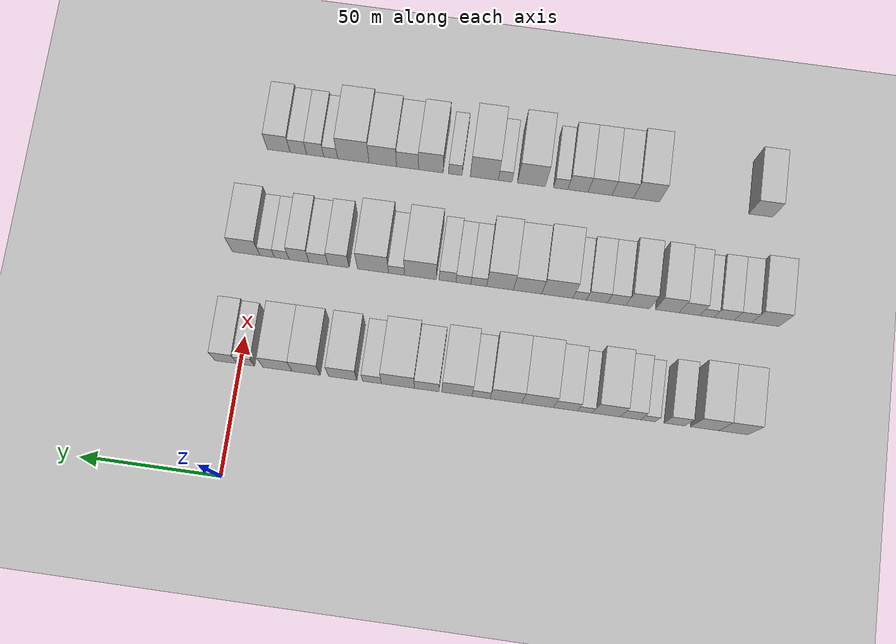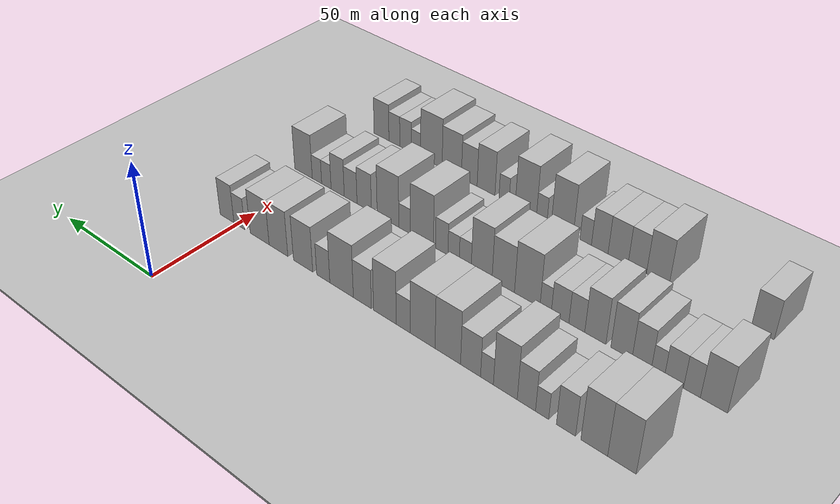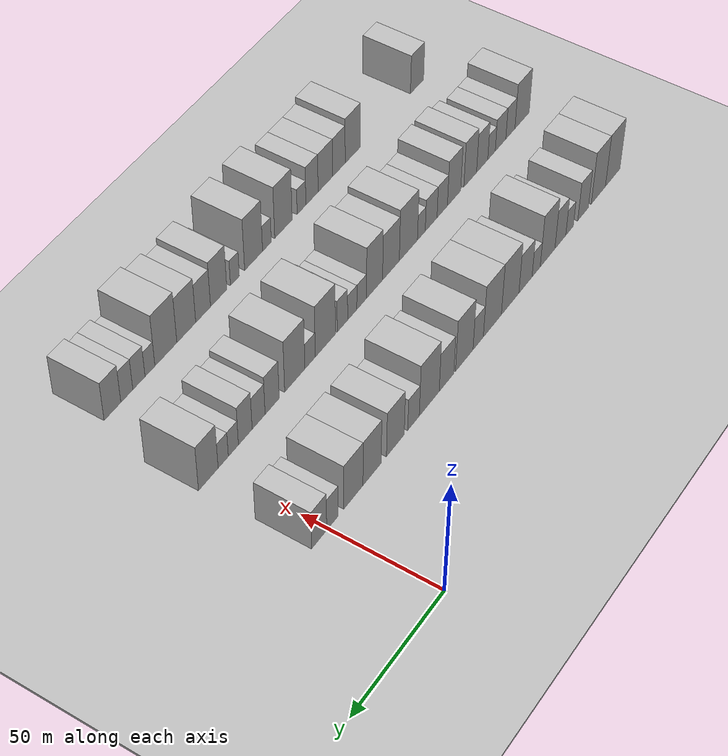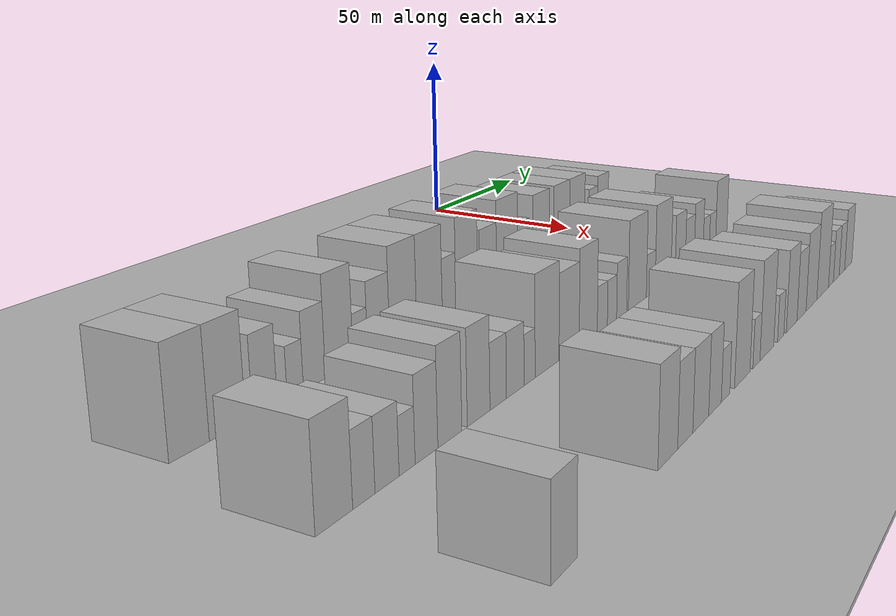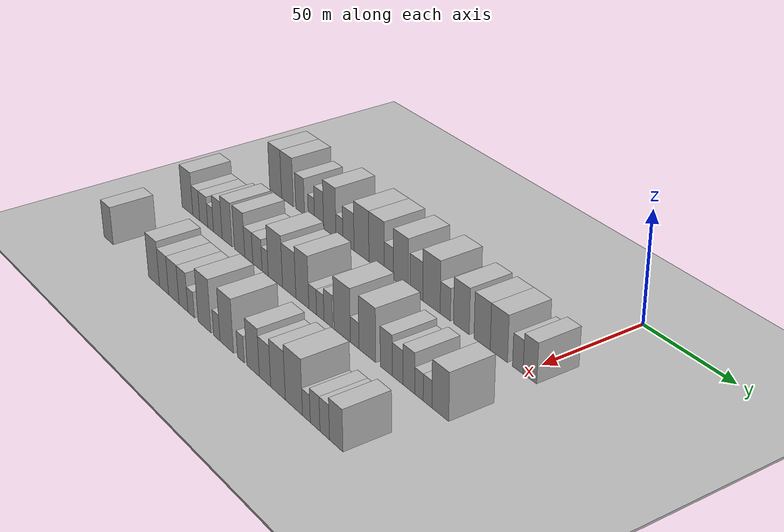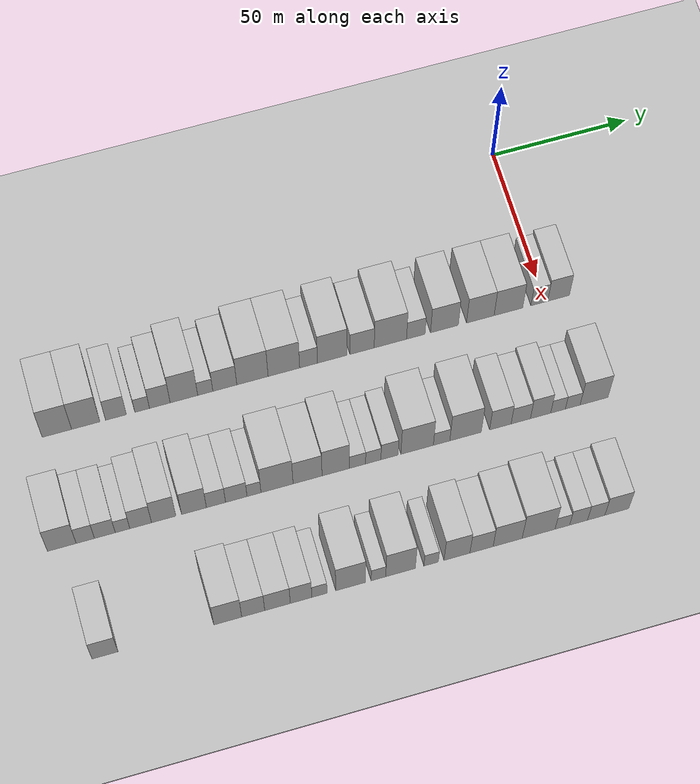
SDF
<sdf version="1.6">
 <world name="default">
  <include><name>ground_plane_1</name><uri>model://HANNAS_ground_plane</uri></include>
  <include>
   <name>ground_plane_2</name>
   <uri>model://HANNAS_ground_plane</uri>
   <pose>100 0 0  0 0 0</pose>
  </include>
  <model name="building_27">
   <static>1</static>
   <pose>50.0000 -175.0752 0 0.000000 0.000000 0.000000</pose>
   <link name="link">
    <pose>0 0 12.00 0 0 0</pose>
    <collision name="collision"><geometry><box><size>20.0000 10.2930 24.0000</size></box></geometry></collision>
    <visual name="visual">
     <cast_shadows>0</cast_shadows>
     <geometry><box><size>20.0000 10.2930 24.0000</size></box></geometry>
     <material>
      <script>
       <uri>model://HANNAS_wall/materials/scripts</uri>
       <uri>model://HANNAS_wall/materials/textures</uri>
       <name>vrc/HANNAS_wall</name>
      </script>
     </material>
    </visual>
   </link>
  </model>
  <model name="building_28">
   <static>1</static>
   <pose>50.0000 -164.9547 0 0.000000 0.000000 0.000000</pose>
   <link name="link">
    <pose>0 0 12.00 0 0 0</pose>
    <collision name="collision"><geometry><box><size>20.0000 9.9480 24.0000</size></box></geometry></collision>
    <visual name="visual">
     <cast_shadows>0</cast_shadows>
     <geometry><box><size>20.0000 9.9480 24.0000</size></box></geometry>
     <material>
      <script>
       <uri>model://HANNAS_wall/materials/scripts</uri>
       <uri>model://HANNAS_wall/materials/textures</uri>
       <name>vrc/HANNAS_wall</name>
      </script>
     </material>
    </visual>
   </link>
  </model>
  <model name="building_29">
   <static>1</static>
   <pose>50.0000 -154.3123 0 0.000000 0.000000 0.000000</pose>
   <link name="link">
    <pose>0 0 9.00 0 0 0</pose>
    <collision name="collision"><geometry><box><size>20.0000 7.3368 18.0000</size></box></geometry></collision>
    <visual name="visual">
     <cast_shadows>0</cast_shadows>
     <geometry><box><size>20.0000 7.3368 18.0000</size></box></geometry>
     <material>
      <script>
       <uri>model://HANNAS_wall/materials/scripts</uri>
       <uri>model://HANNAS_wall/materials/textures</uri>
       <name>vrc/HANNAS_wall</name>
      </script>
     </material>
    </visual>
   </link>
  </model>
  <model name="building_30">
   <static>1</static>
   <pose>50.0000 -145.0595 0 0.000000 0.000000 0.000000</pose>
   <link name="link">
    <pose>0 0 6.00 0 0 0</pose>
    <collision name="collision"><geometry><box><size>20.0000 5.1688 12.0000</size></box></geometry></collision>
    <visual name="visual">
     <cast_shadows>0</cast_shadows>
     <geometry><box><size>20.0000 5.1688 12.0000</size></box></geometry>
     <material>
      <script>
       <uri>model://HANNAS_wall/materials/scripts</uri>
       <uri>model://HANNAS_wall/materials/textures</uri>
       <name>vrc/HANNAS_wall</name>
      </script>
     </material>
    </visual>
   </link>
  </model>
  <model name="building_31">
   <static>1</static>
   <pose>50.0000 -138.8171 0 0.000000 0.000000 0.000000</pose>
   <link name="link">
    <pose>0 0 9.00 0 0 0</pose>
    <collision name="collision"><geometry><box><size>20.0000 7.3159 18.0000</size></box></geometry></collision>
    <visual name="visual">
     <cast_shadows>0</cast_shadows>
     <geometry><box><size>20.0000 7.3159 18.0000</size></box></geometry>
     <material>
      <script>
       <uri>model://HANNAS_wall/materials/scripts</uri>
       <uri>model://HANNAS_wall/materials/textures</uri>
       <name>vrc/HANNAS_wall</name>
      </script>
     </material>
    </visual>
   </link>
  </model>
  <model name="building_32">
   <static>1</static>
   <pose>50.0000 -130.2730 0 0.000000 0.000000 0.000000</pose>
   <link name="link">
    <pose>0 0 12.00 0 0 0</pose>
    <collision name="collision"><geometry><box><size>20.0000 9.7723 24.0000</size></box></geometry></collision>
    <visual name="visual">
     <cast_shadows>0</cast_shadows>
     <geometry><box><size>20.0000 9.7723 24.0000</size></box></geometry>
     <material>
      <script>
       <uri>model://HANNAS_wall/materials/scripts</uri>
       <uri>model://HANNAS_wall/materials/textures</uri>
       <name>vrc/HANNAS_wall</name>
      </script>
     </material>
    </visual>
   </link>
  </model>
  <model name="building_33">
   <static>1</static>
   <pose>50.0000 -122.7039 0 0.000000 0.000000 0.000000</pose>
   <link name="link">
    <pose>0 0 6.00 0 0 0</pose>
    <collision name="collision"><geometry><box><size>20.0000 5.3659 12.0000</size></box></geometry></collision>
    <visual name="visual">
     <cast_shadows>0</cast_shadows>
     <geometry><box><size>20.0000 5.3659 12.0000</size></box></geometry>
     <material>
      <script>
       <uri>model://HANNAS_wall/materials/scripts</uri>
       <uri>model://HANNAS_wall/materials/textures</uri>
       <name>vrc/HANNAS_wall</name>
      </script>
     </material>
    </visual>
   </link>
  </model>
  <model name="building_34">
   <static>1</static>
   <pose>50.0000 -115.7547 0 0.000000 0.000000 0.000000</pose>
   <link name="link">
    <pose>0 0 9.00 0 0 0</pose>
    <collision name="collision"><geometry><box><size>20.0000 8.5325 18.0000</size></box></geometry></collision>
    <visual name="visual">
     <cast_shadows>0</cast_shadows>
     <geometry><box><size>20.0000 8.5325 18.0000</size></box></geometry>
     <material>
      <script>
       <uri>model://HANNAS_wall/materials/scripts</uri>
       <uri>model://HANNAS_wall/materials/textures</uri>
       <name>vrc/HANNAS_wall</name>
      </script>
     </material>
    </visual>
   </link>
  </model>
  <model name="building_35">
   <static>1</static>
   <pose>50.0000 -105.9031 0 0.000000 0.000000 0.000000</pose>
   <link name="link">
    <pose>0 0 12.00 0 0 0</pose>
    <collision name="collision"><geometry><box><size>20.0000 11.1709 24.0000</size></box></geometry></collision>
    <visual name="visual">
     <cast_shadows>0</cast_shadows>
     <geometry><box><size>20.0000 11.1709 24.0000</size></box></geometry>
     <material>
      <script>
       <uri>model://HANNAS_wall/materials/scripts</uri>
       <uri>model://HANNAS_wall/materials/textures</uri>
       <name>vrc/HANNAS_wall</name>
      </script>
     </material>
    </visual>
   </link>
  </model>
  <model name="building_36">
   <static>1</static>
   <pose>50.0000 -94.6707 0 0.000000 0.000000 0.000000</pose>
   <link name="link">
    <pose>0 0 12.00 0 0 0</pose>
    <collision name="collision"><geometry><box><size>20.0000 11.2938 24.0000</size></box></geometry></collision>
    <visual name="visual">
     <cast_shadows>0</cast_shadows>
     <geometry><box><size>20.0000 11.2938 24.0000</size></box></geometry>
     <material>
      <script>
       <uri>model://HANNAS_wall/materials/scripts</uri>
       <uri>model://HANNAS_wall/materials/textures</uri>
       <name>vrc/HANNAS_wall</name>
      </script>
     </material>
    </visual>
   </link>
  </model>
  <model name="building_37">
   <static>1</static>
   <pose>50.0000 -85.8320 0 0.000000 0.000000 0.000000</pose>
   <link name="link">
    <pose>0 0 7.50 0 0 0</pose>
    <collision name="collision"><geometry><box><size>20.0000 6.3835 15.0000</size></box></geometry></collision>
    <visual name="visual">
     <cast_shadows>0</cast_shadows>
     <geometry><box><size>20.0000 6.3835 15.0000</size></box></geometry>
     <material>
      <script>
       <uri>model://HANNAS_wall/materials/scripts</uri>
       <uri>model://HANNAS_wall/materials/textures</uri>
       <name>vrc/HANNAS_wall</name>
      </script>
     </material>
    </visual>
   </link>
  </model>
  <model name="building_38">
   <static>1</static>
   <pose>50.0000 -77.3093 0 0.000000 0.000000 0.000000</pose>
   <link name="link">
    <pose>0 0 12.00 0 0 0</pose>
    <collision name="collision"><geometry><box><size>20.0000 10.6619 24.0000</size></box></geometry></collision>
    <visual name="visual">
     <cast_shadows>0</cast_shadows>
     <geometry><box><size>20.0000 10.6619 24.0000</size></box></geometry>
     <material>
      <script>
       <uri>model://HANNAS_wall/materials/scripts</uri>
       <uri>model://HANNAS_wall/materials/textures</uri>
       <name>vrc/HANNAS_wall</name>
      </script>
     </material>
    </visual>
   </link>
  </model>
  <model name="building_39">
   <static>1</static>
   <pose>50.0000 -66.5992 0 0.000000 0.000000 0.000000</pose>
   <link name="link">
    <pose>0 0 9.00 0 0 0</pose>
    <collision name="collision"><geometry><box><size>20.0000 8.7583 18.0000</size></box></geometry></collision>
    <visual name="visual">
     <cast_shadows>0</cast_shadows>
     <geometry><box><size>20.0000 8.7583 18.0000</size></box></geometry>
     <material>
      <script>
       <uri>model://HANNAS_wall/materials/scripts</uri>
       <uri>model://HANNAS_wall/materials/textures</uri>
       <name>vrc/HANNAS_wall</name>
      </script>
     </material>
    </visual>
   </link>
  </model>
  <model name="building_40">
   <static>1</static>
   <pose>50.0000 -56.3737 0 0.000000 0.000000 0.000000</pose>
   <link name="link">
    <pose>0 0 12.00 0 0 0</pose>
    <collision name="collision"><geometry><box><size>20.0000 11.6929 24.0000</size></box></geometry></collision>
    <visual name="visual">
     <cast_shadows>0</cast_shadows>
     <geometry><box><size>20.0000 11.6929 24.0000</size></box></geometry>
     <material>
      <script>
       <uri>model://HANNAS_wall/materials/scripts</uri>
       <uri>model://HANNAS_wall/materials/textures</uri>
       <name>vrc/HANNAS_wall</name>
      </script>
     </material>
    </visual>
   </link>
  </model>
  <model name="building_41">
   <static>1</static>
   <pose>50.0000 -47.1765 0 0.000000 0.000000 0.000000</pose>
   <link name="link">
    <pose>0 0 7.50 0 0 0</pose>
    <collision name="collision"><geometry><box><size>20.0000 6.7015 15.0000</size></box></geometry></collision>
    <visual name="visual">
     <cast_shadows>0</cast_shadows>
     <geometry><box><size>20.0000 6.7015 15.0000</size></box></geometry>
     <material>
      <script>
       <uri>model://HANNAS_wall/materials/scripts</uri>
       <uri>model://HANNAS_wall/materials/textures</uri>
       <name>vrc/HANNAS_wall</name>
      </script>
     </material>
    </visual>
   </link>
  </model>
  <model name="building_42">
   <static>1</static>
   <pose>50.0000 -36.7780 0 0.000000 0.000000 0.000000</pose>
   <link name="link">
    <pose>0 0 10.50 0 0 0</pose>
    <collision name="collision"><geometry><box><size>20.0000 10.0955 21.0000</size></box></geometry></collision>
    <visual name="visual">
     <cast_shadows>0</cast_shadows>
     <geometry><box><size>20.0000 10.0955 21.0000</size></box></geometry>
     <material>
      <script>
       <uri>model://HANNAS_wall/materials/scripts</uri>
       <uri>model://HANNAS_wall/materials/textures</uri>
       <name>vrc/HANNAS_wall</name>
      </script>
     </material>
    </visual>
   </link>
  </model>
  <model name="building_43">
   <static>1</static>
   <pose>50.0000 -23.6953 0 0.000000 0.000000 0.000000</pose>
   <link name="link">
    <pose>0 0 10.50 0 0 0</pose>
    <collision name="collision"><geometry><box><size>20.0000 10.0698 21.0000</size></box></geometry></collision>
    <visual name="visual">
     <cast_shadows>0</cast_shadows>
     <geometry><box><size>20.0000 10.0698 21.0000</size></box></geometry>
     <material>
      <script>
       <uri>model://HANNAS_wall/materials/scripts</uri>
       <uri>model://HANNAS_wall/materials/textures</uri>
       <name>vrc/HANNAS_wall</name>
      </script>
     </material>
    </visual>
   </link>
  </model>
  <model name="building_44">
   <static>1</static>
   <pose>50.0000 -13.4348 0 0.000000 0.000000 0.000000</pose>
   <link name="link">
    <pose>0 0 10.50 0 0 0</pose>
    <collision name="collision"><geometry><box><size>20.0000 10.4512 21.0000</size></box></geometry></collision>
    <visual name="visual">
     <cast_shadows>0</cast_shadows>
     <geometry><box><size>20.0000 10.4512 21.0000</size></box></geometry>
     <material>
      <script>
       <uri>model://HANNAS_wall/materials/scripts</uri>
       <uri>model://HANNAS_wall/materials/textures</uri>
       <name>vrc/HANNAS_wall</name>
      </script>
     </material>
    </visual>
   </link>
  </model>
  <model name="building_45">
   <static>1</static>
   <pose>50.0000 -2.1242 0 0.000000 0.000000 0.000000</pose>
   <link name="link">
    <pose>0 0 7.50 0 0 0</pose>
    <collision name="collision"><geometry><box><size>20.0000 6.1701 15.0000</size></box></geometry></collision>
    <visual name="visual">
     <cast_shadows>0</cast_shadows>
     <geometry><box><size>20.0000 6.1701 15.0000</size></box></geometry>
     <material>
      <script>
       <uri>model://HANNAS_wall/materials/scripts</uri>
       <uri>model://HANNAS_wall/materials/textures</uri>
       <name>vrc/HANNAS_wall</name>
      </script>
     </material>
    </visual>
   </link>
  </model>
  <model name="building_46">
   <static>1</static>
   <pose>50.0000 4.9469 0 0.000000 0.000000 0.000000</pose>
   <link name="link">
    <pose>0 0 9.00 0 0 0</pose>
    <collision name="collision"><geometry><box><size>20.0000 7.9721 18.0000</size></box></geometry></collision>
    <visual name="visual">
     <cast_shadows>0</cast_shadows>
     <geometry><box><size>20.0000 7.9721 18.0000</size></box></geometry>
     <material>
      <script>
       <uri>model://HANNAS_wall/materials/scripts</uri>
       <uri>model://HANNAS_wall/materials/textures</uri>
       <name>vrc/HANNAS_wall</name>
      </script>
     </material>
    </visual>
   </link>
  </model>
  <model name="building_112">
   <static>1</static>
   <pose>90.0000 -182.9634 0 0.000000 0.000000 0.000000</pose>
   <link name="link">
    <pose>0 0 10.50 0 0 0</pose>
    <collision name="collision"><geometry><box><size>20.0000 9.8793 21.0000</size></box></geometry></collision>
    <visual name="visual">
     <cast_shadows>0</cast_shadows>
     <geometry><box><size>20.0000 9.8793 21.0000</size></box></geometry>
     <material>
      <script>
       <uri>model://HANNAS_wall/materials/scripts</uri>
       <uri>model://HANNAS_wall/materials/textures</uri>
       <name>vrc/HANNAS_wall</name>
      </script>
     </material>
    </visual>
   </link>
  </model>
  <model name="building_113">
   <static>1</static>
   <pose>90.0000 -174.8866 0 0.000000 0.000000 0.000000</pose>
   <link name="link">
    <pose>0 0 7.50 0 0 0</pose>
    <collision name="collision"><geometry><box><size>20.0000 6.2742 15.0000</size></box></geometry></collision>
    <visual name="visual">
     <cast_shadows>0</cast_shadows>
     <geometry><box><size>20.0000 6.2742 15.0000</size></box></geometry>
     <material>
      <script>
       <uri>model://HANNAS_wall/materials/scripts</uri>
       <uri>model://HANNAS_wall/materials/textures</uri>
       <name>vrc/HANNAS_wall</name>
      </script>
     </material>
    </visual>
   </link>
  </model>
  <model name="building_114">
   <static>1</static>
   <pose>90.0000 -168.1521 0 0.000000 0.000000 0.000000</pose>
   <link name="link">
    <pose>0 0 7.50 0 0 0</pose>
    <collision name="collision"><geometry><box><size>20.0000 7.1948 15.0000</size></box></geometry></collision>
    <visual name="visual">
     <cast_shadows>0</cast_shadows>
     <geometry><box><size>20.0000 7.1948 15.0000</size></box></geometry>
     <material>
      <script>
       <uri>model://HANNAS_wall/materials/scripts</uri>
       <uri>model://HANNAS_wall/materials/textures</uri>
       <name>vrc/HANNAS_wall</name>
      </script>
     </material>
    </visual>
   </link>
  </model>
  <model name="building_115">
   <static>1</static>
   <pose>90.0000 -162.0318 0 0.000000 0.000000 0.000000</pose>
   <link name="link">
    <pose>0 0 6.00 0 0 0</pose>
    <collision name="collision"><geometry><box><size>20.0000 5.0458 12.0000</size></box></geometry></collision>
    <visual name="visual">
     <cast_shadows>0</cast_shadows>
     <geometry><box><size>20.0000 5.0458 12.0000</size></box></geometry>
     <material>
      <script>
       <uri>model://HANNAS_wall/materials/scripts</uri>
       <uri>model://HANNAS_wall/materials/textures</uri>
       <name>vrc/HANNAS_wall</name>
      </script>
     </material>
    </visual>
   </link>
  </model>
  <model name="building_116">
   <static>1</static>
   <pose>90.0000 -155.7580 0 0.000000 0.000000 0.000000</pose>
   <link name="link">
    <pose>0 0 9.00 0 0 0</pose>
    <collision name="collision"><geometry><box><size>20.0000 7.5017 18.0000</size></box></geometry></collision>
    <visual name="visual">
     <cast_shadows>0</cast_shadows>
     <geometry><box><size>20.0000 7.5017 18.0000</size></box></geometry>
     <material>
      <script>
       <uri>model://HANNAS_wall/materials/scripts</uri>
       <uri>model://HANNAS_wall/materials/textures</uri>
       <name>vrc/HANNAS_wall</name>
      </script>
     </material>
    </visual>
   </link>
  </model>
  <model name="building_117">
   <static>1</static>
   <pose>90.0000 -147.7885 0 0.000000 0.000000 0.000000</pose>
   <link name="link">
    <pose>0 0 10.50 0 0 0</pose>
    <collision name="collision"><geometry><box><size>20.0000 8.4375 21.0000</size></box></geometry></collision>
    <visual name="visual">
     <cast_shadows>0</cast_shadows>
     <geometry><box><size>20.0000 8.4375 21.0000</size></box></geometry>
     <material>
      <script>
       <uri>model://HANNAS_wall/materials/scripts</uri>
       <uri>model://HANNAS_wall/materials/textures</uri>
       <name>vrc/HANNAS_wall</name>
      </script>
     </material>
    </visual>
   </link>
  </model>
  <model name="building_118">
   <static>1</static>
   <pose>90.0000 -137.2436 0 0.000000 0.000000 0.000000</pose>
   <link name="link">
    <pose>0 0 10.50 0 0 0</pose>
    <collision name="collision"><geometry><box><size>20.0000 8.6522 21.0000</size></box></geometry></collision>
    <visual name="visual">
     <cast_shadows>0</cast_shadows>
     <geometry><box><size>20.0000 8.6522 21.0000</size></box></geometry>
     <material>
      <script>
       <uri>model://HANNAS_wall/materials/scripts</uri>
       <uri>model://HANNAS_wall/materials/textures</uri>
       <name>vrc/HANNAS_wall</name>
      </script>
     </material>
    </visual>
   </link>
  </model>
  <model name="building_119">
   <static>1</static>
   <pose>90.0000 -129.5872 0 0.000000 0.000000 0.000000</pose>
   <link name="link">
    <pose>0 0 7.50 0 0 0</pose>
    <collision name="collision"><geometry><box><size>20.0000 6.6606 15.0000</size></box></geometry></collision>
    <visual name="visual">
     <cast_shadows>0</cast_shadows>
     <geometry><box><size>20.0000 6.6606 15.0000</size></box></geometry>
     <material>
      <script>
       <uri>model://HANNAS_wall/materials/scripts</uri>
       <uri>model://HANNAS_wall/materials/textures</uri>
       <name>vrc/HANNAS_wall</name>
      </script>
     </material>
    </visual>
   </link>
  </model>
  <model name="building_120">
   <static>1</static>
   <pose>90.0000 -122.5111 0 0.000000 0.000000 0.000000</pose>
   <link name="link">
    <pose>0 0 7.50 0 0 0</pose>
    <collision name="collision"><geometry><box><size>20.0000 7.4914 15.0000</size></box></geometry></collision>
    <visual name="visual">
     <cast_shadows>0</cast_shadows>
     <geometry><box><size>20.0000 7.4914 15.0000</size></box></geometry>
     <material>
      <script>
       <uri>model://HANNAS_wall/materials/scripts</uri>
       <uri>model://HANNAS_wall/materials/textures</uri>
       <name>vrc/HANNAS_wall</name>
      </script>
     </material>
    </visual>
   </link>
  </model>
  <model name="building_121">
   <static>1</static>
   <pose>90.0000 -116.3215 0 0.000000 0.000000 0.000000</pose>
   <link name="link">
    <pose>0 0 6.00 0 0 0</pose>
    <collision name="collision"><geometry><box><size>20.0000 4.8878 12.0000</size></box></geometry></collision>
    <visual name="visual">
     <cast_shadows>0</cast_shadows>
     <geometry><box><size>20.0000 4.8878 12.0000</size></box></geometry>
     <material>
      <script>
       <uri>model://HANNAS_wall/materials/scripts</uri>
       <uri>model://HANNAS_wall/materials/textures</uri>
       <name>vrc/HANNAS_wall</name>
      </script>
     </material>
    </visual>
   </link>
  </model>
  <model name="building_122">
   <static>1</static>
   <pose>90.0000 -108.2476 0 0.000000 0.000000 0.000000</pose>
   <link name="link">
    <pose>0 0 12.00 0 0 0</pose>
    <collision name="collision"><geometry><box><size>20.0000 11.2600 24.0000</size></box></geometry></collision>
    <visual name="visual">
     <cast_shadows>0</cast_shadows>
     <geometry><box><size>20.0000 11.2600 24.0000</size></box></geometry>
     <material>
      <script>
       <uri>model://HANNAS_wall/materials/scripts</uri>
       <uri>model://HANNAS_wall/materials/textures</uri>
       <name>vrc/HANNAS_wall</name>
      </script>
     </material>
    </visual>
   </link>
  </model>
  <model name="building_123">
   <static>1</static>
   <pose>90.0000 -97.5231 0 0.000000 0.000000 0.000000</pose>
   <link name="link">
    <pose>0 0 10.50 0 0 0</pose>
    <collision name="collision"><geometry><box><size>20.0000 10.1890 21.0000</size></box></geometry></collision>
    <visual name="visual">
     <cast_shadows>0</cast_shadows>
     <geometry><box><size>20.0000 10.1890 21.0000</size></box></geometry>
     <material>
      <script>
       <uri>model://HANNAS_wall/materials/scripts</uri>
       <uri>model://HANNAS_wall/materials/textures</uri>
       <name>vrc/HANNAS_wall</name>
      </script>
     </material>
    </visual>
   </link>
  </model>
  <model name="building_124">
   <static>1</static>
   <pose>90.0000 -87.5817 0 0.000000 0.000000 0.000000</pose>
   <link name="link">
    <pose>0 0 12.00 0 0 0</pose>
    <collision name="collision"><geometry><box><size>20.0000 9.6939 24.0000</size></box></geometry></collision>
    <visual name="visual">
     <cast_shadows>0</cast_shadows>
     <geometry><box><size>20.0000 9.6939 24.0000</size></box></geometry>
     <material>
      <script>
       <uri>model://HANNAS_wall/materials/scripts</uri>
       <uri>model://HANNAS_wall/materials/textures</uri>
       <name>vrc/HANNAS_wall</name>
      </script>
     </material>
    </visual>
   </link>
  </model>
  <model name="building_125">
   <static>1</static>
   <pose>90.0000 -79.8986 0 0.000000 0.000000 0.000000</pose>
   <link name="link">
    <pose>0 0 6.00 0 0 0</pose>
    <collision name="collision"><geometry><box><size>20.0000 5.6722 12.0000</size></box></geometry></collision>
    <visual name="visual">
     <cast_shadows>0</cast_shadows>
     <geometry><box><size>20.0000 5.6722 12.0000</size></box></geometry>
     <material>
      <script>
       <uri>model://HANNAS_wall/materials/scripts</uri>
       <uri>model://HANNAS_wall/materials/textures</uri>
       <name>vrc/HANNAS_wall</name>
      </script>
     </material>
    </visual>
   </link>
  </model>
  <model name="building_126">
   <static>1</static>
   <pose>90.0000 -74.3514 0 0.000000 0.000000 0.000000</pose>
   <link name="link">
    <pose>0 0 6.00 0 0 0</pose>
    <collision name="collision"><geometry><box><size>20.0000 5.4222 12.0000</size></box></geometry></collision>
    <visual name="visual">
     <cast_shadows>0</cast_shadows>
     <geometry><box><size>20.0000 5.4222 12.0000</size></box></geometry>
     <material>
      <script>
       <uri>model://HANNAS_wall/materials/scripts</uri>
       <uri>model://HANNAS_wall/materials/textures</uri>
       <name>vrc/HANNAS_wall</name>
      </script>
     </material>
    </visual>
   </link>
  </model>
  <model name="building_127">
   <static>1</static>
   <pose>90.0000 -68.6006 0 0.000000 0.000000 0.000000</pose>
   <link name="link">
    <pose>0 0 7.50 0 0 0</pose>
    <collision name="collision"><geometry><box><size>20.0000 6.0794 15.0000</size></box></geometry></collision>
    <visual name="visual">
     <cast_shadows>0</cast_shadows>
     <geometry><box><size>20.0000 6.0794 15.0000</size></box></geometry>
     <material>
      <script>
       <uri>model://HANNAS_wall/materials/scripts</uri>
       <uri>model://HANNAS_wall/materials/textures</uri>
       <name>vrc/HANNAS_wall</name>
      </script>
     </material>
    </visual>
   </link>
  </model>
  <model name="building_128">
   <static>1</static>
   <pose>90.0000 -58.7917 0 0.000000 0.000000 0.000000</pose>
   <link name="link">
    <pose>0 0 12.00 0 0 0</pose>
    <collision name="collision"><geometry><box><size>20.0000 11.5384 24.0000</size></box></geometry></collision>
    <visual name="visual">
     <cast_shadows>0</cast_shadows>
     <geometry><box><size>20.0000 11.5384 24.0000</size></box></geometry>
     <material>
      <script>
       <uri>model://HANNAS_wall/materials/scripts</uri>
       <uri>model://HANNAS_wall/materials/textures</uri>
       <name>vrc/HANNAS_wall</name>
      </script>
     </material>
    </visual>
   </link>
  </model>
  <model name="building_129">
   <static>1</static>
   <pose>90.0000 -50.0943 0 0.000000 0.000000 0.000000</pose>
   <link name="link">
    <pose>0 0 6.00 0 0 0</pose>
    <collision name="collision"><geometry><box><size>20.0000 5.8565 12.0000</size></box></geometry></collision>
    <visual name="visual">
     <cast_shadows>0</cast_shadows>
     <geometry><box><size>20.0000 5.8565 12.0000</size></box></geometry>
     <material>
      <script>
       <uri>model://HANNAS_wall/materials/scripts</uri>
       <uri>model://HANNAS_wall/materials/textures</uri>
       <name>vrc/HANNAS_wall</name>
      </script>
     </material>
    </visual>
   </link>
  </model>
  <model name="building_130">
   <static>1</static>
   <pose>90.0000 -41.5544 0 0.000000 0.000000 0.000000</pose>
   <link name="link">
    <pose>0 0 12.00 0 0 0</pose>
    <collision name="collision"><geometry><box><size>20.0000 11.2233 24.0000</size></box></geometry></collision>
    <visual name="visual">
     <cast_shadows>0</cast_shadows>
     <geometry><box><size>20.0000 11.2233 24.0000</size></box></geometry>
     <material>
      <script>
       <uri>model://HANNAS_wall/materials/scripts</uri>
       <uri>model://HANNAS_wall/materials/textures</uri>
       <name>vrc/HANNAS_wall</name>
      </script>
     </material>
    </visual>
   </link>
  </model>
  <model name="building_131">
   <static>1</static>
   <pose>90.0000 -29.0975 0 0.000000 0.000000 0.000000</pose>
   <link name="link">
    <pose>0 0 9.00 0 0 0</pose>
    <collision name="collision"><geometry><box><size>20.0000 7.6905 18.0000</size></box></geometry></collision>
    <visual name="visual">
     <cast_shadows>0</cast_shadows>
     <geometry><box><size>20.0000 7.6905 18.0000</size></box></geometry>
     <material>
      <script>
       <uri>model://HANNAS_wall/materials/scripts</uri>
       <uri>model://HANNAS_wall/materials/textures</uri>
       <name>vrc/HANNAS_wall</name>
      </script>
     </material>
    </visual>
   </link>
  </model>
  <model name="building_132">
   <static>1</static>
   <pose>90.0000 -21.7808 0 0.000000 0.000000 0.000000</pose>
   <link name="link">
    <pose>0 0 7.50 0 0 0</pose>
    <collision name="collision"><geometry><box><size>20.0000 6.9428 15.0000</size></box></geometry></collision>
    <visual name="visual">
     <cast_shadows>0</cast_shadows>
     <geometry><box><size>20.0000 6.9428 15.0000</size></box></geometry>
     <material>
      <script>
       <uri>model://HANNAS_wall/materials/scripts</uri>
       <uri>model://HANNAS_wall/materials/textures</uri>
       <name>vrc/HANNAS_wall</name>
      </script>
     </material>
    </visual>
   </link>
  </model>
  <model name="building_133">
   <static>1</static>
   <pose>90.0000 -14.6648 0 0.000000 0.000000 0.000000</pose>
   <link name="link">
    <pose>0 0 9.00 0 0 0</pose>
    <collision name="collision"><geometry><box><size>20.0000 7.2892 18.0000</size></box></geometry></collision>
    <visual name="visual">
     <cast_shadows>0</cast_shadows>
     <geometry><box><size>20.0000 7.2892 18.0000</size></box></geometry>
     <material>
      <script>
       <uri>model://HANNAS_wall/materials/scripts</uri>
       <uri>model://HANNAS_wall/materials/textures</uri>
       <name>vrc/HANNAS_wall</name>
      </script>
     </material>
    </visual>
   </link>
  </model>
  <model name="building_134">
   <static>1</static>
   <pose>90.0000 -8.3764 0 0.000000 0.000000 0.000000</pose>
   <link name="link">
    <pose>0 0 6.00 0 0 0</pose>
    <collision name="collision"><geometry><box><size>20.0000 5.2877 12.0000</size></box></geometry></collision>
    <visual name="visual">
     <cast_shadows>0</cast_shadows>
     <geometry><box><size>20.0000 5.2877 12.0000</size></box></geometry>
     <material>
      <script>
       <uri>model://HANNAS_wall/materials/scripts</uri>
       <uri>model://HANNAS_wall/materials/textures</uri>
       <name>vrc/HANNAS_wall</name>
      </script>
     </material>
    </visual>
   </link>
  </model>
  <model name="building_135">
   <static>1</static>
   <pose>90.0000 -3.0791 0 0.000000 0.000000 0.000000</pose>
   <link name="link">
    <pose>0 0 6.00 0 0 0</pose>
    <collision name="collision"><geometry><box><size>20.0000 5.3068 12.0000</size></box></geometry></collision>
    <visual name="visual">
     <cast_shadows>0</cast_shadows>
     <geometry><box><size>20.0000 5.3068 12.0000</size></box></geometry>
     <material>
      <script>
       <uri>model://HANNAS_wall/materials/scripts</uri>
       <uri>model://HANNAS_wall/materials/textures</uri>
       <name>vrc/HANNAS_wall</name>
      </script>
     </material>
    </visual>
   </link>
  </model>
  <model name="building_136">
   <static>1</static>
   <pose>90.0000 4.6169 0 0.000000 0.000000 0.000000</pose>
   <link name="link">
    <pose>0 0 10.50 0 0 0</pose>
    <collision name="collision"><geometry><box><size>20.0000 10.0852 21.0000</size></box></geometry></collision>
    <visual name="visual">
     <cast_shadows>0</cast_shadows>
     <geometry><box><size>20.0000 10.0852 21.0000</size></box></geometry>
     <material>
      <script>
       <uri>model://HANNAS_wall/materials/scripts</uri>
       <uri>model://HANNAS_wall/materials/textures</uri>
       <name>vrc/HANNAS_wall</name>
      </script>
     </material>
    </visual>
   </link>
  </model>
  <model name="building_193">
   <static>1</static>
   <pose>130.0000 -178.0120 0 0.000000 0.000000 0.000000</pose>
   <link name="link">
    <pose>0 0 9.00 0 0 0</pose>
    <collision name="collision"><geometry><box><size>20.0000 8.7974 18.0000</size></box></geometry></collision>
    <visual name="visual">
     <cast_shadows>0</cast_shadows>
     <geometry><box><size>20.0000 8.7974 18.0000</size></box></geometry>
     <material>
      <script>
       <uri>model://HANNAS_wall/materials/scripts</uri>
       <uri>model://HANNAS_wall/materials/textures</uri>
       <name>vrc/HANNAS_wall</name>
      </script>
     </material>
    </visual>
   </link>
  </model>
  <model name="building_194">
   <static>1</static>
   <pose>130.0000 -136.2682 0 0.000000 0.000000 0.000000</pose>
   <link name="link">
    <pose>0 0 10.50 0 0 0</pose>
    <collision name="collision"><geometry><box><size>20.0000 9.5634 21.0000</size></box></geometry></collision>
    <visual name="visual">
     <cast_shadows>0</cast_shadows>
     <geometry><box><size>20.0000 9.5634 21.0000</size></box></geometry>
     <material>
      <script>
       <uri>model://HANNAS_wall/materials/scripts</uri>
       <uri>model://HANNAS_wall/materials/textures</uri>
       <name>vrc/HANNAS_wall</name>
      </script>
     </material>
    </visual>
   </link>
  </model>
  <model name="building_195">
   <static>1</static>
   <pose>130.0000 -127.5480 0 0.000000 0.000000 0.000000</pose>
   <link name="link">
    <pose>0 0 9.00 0 0 0</pose>
    <collision name="collision"><geometry><box><size>20.0000 7.8770 18.0000</size></box></geometry></collision>
    <visual name="visual">
     <cast_shadows>0</cast_shadows>
     <geometry><box><size>20.0000 7.8770 18.0000</size></box></geometry>
     <material>
      <script>
       <uri>model://HANNAS_wall/materials/scripts</uri>
       <uri>model://HANNAS_wall/materials/textures</uri>
       <name>vrc/HANNAS_wall</name>
      </script>
     </material>
    </visual>
   </link>
  </model>
  <model name="building_196">
   <static>1</static>
   <pose>130.0000 -119.2129 0 0.000000 0.000000 0.000000</pose>
   <link name="link">
    <pose>0 0 9.00 0 0 0</pose>
    <collision name="collision"><geometry><box><size>20.0000 8.7932 18.0000</size></box></geometry></collision>
    <visual name="visual">
     <cast_shadows>0</cast_shadows>
     <geometry><box><size>20.0000 8.7932 18.0000</size></box></geometry>
     <material>
      <script>
       <uri>model://HANNAS_wall/materials/scripts</uri>
       <uri>model://HANNAS_wall/materials/textures</uri>
       <name>vrc/HANNAS_wall</name>
      </script>
     </material>
    </visual>
   </link>
  </model>
  <model name="building_197">
   <static>1</static>
   <pose>130.0000 -111.1086 0 0.000000 0.000000 0.000000</pose>
   <link name="link">
    <pose>0 0 9.00 0 0 0</pose>
    <collision name="collision"><geometry><box><size>20.0000 7.4155 18.0000</size></box></geometry></collision>
    <visual name="visual">
     <cast_shadows>0</cast_shadows>
     <geometry><box><size>20.0000 7.4155 18.0000</size></box></geometry>
     <material>
      <script>
       <uri>model://HANNAS_wall/materials/scripts</uri>
       <uri>model://HANNAS_wall/materials/textures</uri>
       <name>vrc/HANNAS_wall</name>
      </script>
     </material>
    </visual>
   </link>
  </model>
  <model name="building_198">
   <static>1</static>
   <pose>130.0000 -104.7769 0 0.000000 0.000000 0.000000</pose>
   <link name="link">
    <pose>0 0 6.00 0 0 0</pose>
    <collision name="collision"><geometry><box><size>20.0000 5.2479 12.0000</size></box></geometry></collision>
    <visual name="visual">
     <cast_shadows>0</cast_shadows>
     <geometry><box><size>20.0000 5.2479 12.0000</size></box></geometry>
     <material>
      <script>
       <uri>model://HANNAS_wall/materials/scripts</uri>
       <uri>model://HANNAS_wall/materials/textures</uri>
       <name>vrc/HANNAS_wall</name>
      </script>
     </material>
    </visual>
   </link>
  </model>
  <model name="building_199">
   <static>1</static>
   <pose>130.0000 -94.0255 0 0.000000 0.000000 0.000000</pose>
   <link name="link">
    <pose>0 0 12.00 0 0 0</pose>
    <collision name="collision"><geometry><box><size>20.0000 10.2549 24.0000</size></box></geometry></collision>
    <visual name="visual">
     <cast_shadows>0</cast_shadows>
     <geometry><box><size>20.0000 10.2549 24.0000</size></box></geometry>
     <material>
      <script>
       <uri>model://HANNAS_wall/materials/scripts</uri>
       <uri>model://HANNAS_wall/materials/textures</uri>
       <name>vrc/HANNAS_wall</name>
      </script>
     </material>
    </visual>
   </link>
  </model>
  <model name="building_200">
   <static>1</static>
   <pose>130.0000 -84.3700 0 0.000000 0.000000 0.000000</pose>
   <link name="link">
    <pose>0 0 6.00 0 0 0</pose>
    <collision name="collision"><geometry><box><size>20.0000 5.0560 12.0000</size></box></geometry></collision>
    <visual name="visual">
     <cast_shadows>0</cast_shadows>
     <geometry><box><size>20.0000 5.0560 12.0000</size></box></geometry>
     <material>
      <script>
       <uri>model://HANNAS_wall/materials/scripts</uri>
       <uri>model://HANNAS_wall/materials/textures</uri>
       <name>vrc/HANNAS_wall</name>
      </script>
     </material>
    </visual>
   </link>
  </model>
  <model name="building_201">
   <static>1</static>
   <pose>130.0000 -76.6965 0 0.000000 0.000000 0.000000</pose>
   <link name="link">
    <pose>0 0 12.00 0 0 0</pose>
    <collision name="collision"><geometry><box><size>20.0000 10.2911 24.0000</size></box></geometry></collision>
    <visual name="visual">
     <cast_shadows>0</cast_shadows>
     <geometry><box><size>20.0000 10.2911 24.0000</size></box></geometry>
     <material>
      <script>
       <uri>model://HANNAS_wall/materials/scripts</uri>
       <uri>model://HANNAS_wall/materials/textures</uri>
       <name>vrc/HANNAS_wall</name>
      </script>
     </material>
    </visual>
   </link>
  </model>
  <model name="building_202">
   <static>1</static>
   <pose>130.0000 -66.0377 0 0.000000 0.000000 0.000000</pose>
   <link name="link">
    <pose>0 0 6.00 0 0 0</pose>
    <collision name="collision"><geometry><box><size>20.0000 5.0266 12.0000</size></box></geometry></collision>
    <visual name="visual">
     <cast_shadows>0</cast_shadows>
     <geometry><box><size>20.0000 5.0266 12.0000</size></box></geometry>
     <material>
      <script>
       <uri>model://HANNAS_wall/materials/scripts</uri>
       <uri>model://HANNAS_wall/materials/textures</uri>
       <name>vrc/HANNAS_wall</name>
      </script>
     </material>
    </visual>
   </link>
  </model>
  <model name="building_203">
   <static>1</static>
   <pose>130.0000 -56.9966 0 0.000000 0.000000 0.000000</pose>
   <link name="link">
    <pose>0 0 10.50 0 0 0</pose>
    <collision name="collision"><geometry><box><size>20.0000 9.0557 21.0000</size></box></geometry></collision>
    <visual name="visual">
     <cast_shadows>0</cast_shadows>
     <geometry><box><size>20.0000 9.0557 21.0000</size></box></geometry>
     <material>
      <script>
       <uri>model://HANNAS_wall/materials/scripts</uri>
       <uri>model://HANNAS_wall/materials/textures</uri>
       <name>vrc/HANNAS_wall</name>
      </script>
     </material>
    </visual>
   </link>
  </model>
  <model name="building_204">
   <static>1</static>
   <pose>130.0000 -48.4132 0 0.000000 0.000000 0.000000</pose>
   <link name="link">
    <pose>0 0 9.00 0 0 0</pose>
    <collision name="collision"><geometry><box><size>20.0000 8.1110 18.0000</size></box></geometry></collision>
    <visual name="visual">
     <cast_shadows>0</cast_shadows>
     <geometry><box><size>20.0000 8.1110 18.0000</size></box></geometry>
     <material>
      <script>
       <uri>model://HANNAS_wall/materials/scripts</uri>
       <uri>model://HANNAS_wall/materials/textures</uri>
       <name>vrc/HANNAS_wall</name>
      </script>
     </material>
    </visual>
   </link>
  </model>
  <model name="building_205">
   <static>1</static>
   <pose>130.0000 -39.2696 0 0.000000 0.000000 0.000000</pose>
   <link name="link">
    <pose>0 0 10.50 0 0 0</pose>
    <collision name="collision"><geometry><box><size>20.0000 10.1763 21.0000</size></box></geometry></collision>
    <visual name="visual">
     <cast_shadows>0</cast_shadows>
     <geometry><box><size>20.0000 10.1763 21.0000</size></box></geometry>
     <material>
      <script>
       <uri>model://HANNAS_wall/materials/scripts</uri>
       <uri>model://HANNAS_wall/materials/textures</uri>
       <name>vrc/HANNAS_wall</name>
      </script>
     </material>
    </visual>
   </link>
  </model>
  <model name="building_206">
   <static>1</static>
   <pose>130.0000 -28.3584 0 0.000000 0.000000 0.000000</pose>
   <link name="link">
    <pose>0 0 12.00 0 0 0</pose>
    <collision name="collision"><geometry><box><size>20.0000 11.6463 24.0000</size></box></geometry></collision>
    <visual name="visual">
     <cast_shadows>0</cast_shadows>
     <geometry><box><size>20.0000 11.6463 24.0000</size></box></geometry>
     <material>
      <script>
       <uri>model://HANNAS_wall/materials/scripts</uri>
       <uri>model://HANNAS_wall/materials/textures</uri>
       <name>vrc/HANNAS_wall</name>
      </script>
     </material>
    </visual>
   </link>
  </model>
  <model name="building_207">
   <static>1</static>
   <pose>130.0000 -19.9543 0 0.000000 0.000000 0.000000</pose>
   <link name="link">
    <pose>0 0 6.00 0 0 0</pose>
    <collision name="collision"><geometry><box><size>20.0000 5.1619 12.0000</size></box></geometry></collision>
    <visual name="visual">
     <cast_shadows>0</cast_shadows>
     <geometry><box><size>20.0000 5.1619 12.0000</size></box></geometry>
     <material>
      <script>
       <uri>model://HANNAS_wall/materials/scripts</uri>
       <uri>model://HANNAS_wall/materials/textures</uri>
       <name>vrc/HANNAS_wall</name>
      </script>
     </material>
    </visual>
   </link>
  </model>
  <model name="building_208">
   <static>1</static>
   <pose>130.0000 -14.2148 0 0.000000 0.000000 0.000000</pose>
   <link name="link">
    <pose>0 0 7.50 0 0 0</pose>
    <collision name="collision"><geometry><box><size>20.0000 6.3172 15.0000</size></box></geometry></collision>
    <visual name="visual">
     <cast_shadows>0</cast_shadows>
     <geometry><box><size>20.0000 6.3172 15.0000</size></box></geometry>
     <material>
      <script>
       <uri>model://HANNAS_wall/materials/scripts</uri>
       <uri>model://HANNAS_wall/materials/textures</uri>
       <name>vrc/HANNAS_wall</name>
      </script>
     </material>
    </visual>
   </link>
  </model>
  <model name="building_209">
   <static>1</static>
   <pose>130.0000 -7.9917 0 0.000000 0.000000 0.000000</pose>
   <link name="link">
    <pose>0 0 7.50 0 0 0</pose>
    <collision name="collision"><geometry><box><size>20.0000 6.1291 15.0000</size></box></geometry></collision>
    <visual name="visual">
     <cast_shadows>0</cast_shadows>
     <geometry><box><size>20.0000 6.1291 15.0000</size></box></geometry>
     <material>
      <script>
       <uri>model://HANNAS_wall/materials/scripts</uri>
       <uri>model://HANNAS_wall/materials/textures</uri>
       <name>vrc/HANNAS_wall</name>
      </script>
     </material>
    </visual>
   </link>
  </model>
  <model name="building_210">
   <static>1</static>
   <pose>130.0000 -0.6829 0 0.000000 0.000000 0.000000</pose>
   <link name="link">
    <pose>0 0 9.00 0 0 0</pose>
    <collision name="collision"><geometry><box><size>20.0000 8.4884 18.0000</size></box></geometry></collision>
    <visual name="visual">
     <cast_shadows>0</cast_shadows>
     <geometry><box><size>20.0000 8.4884 18.0000</size></box></geometry>
     <material>
      <script>
       <uri>model://HANNAS_wall/materials/scripts</uri>
       <uri>model://HANNAS_wall/materials/textures</uri>
       <name>vrc/HANNAS_wall</name>
      </script>
     </material>
    </visual>
   </link>
  </model>
 </world>
</sdf>
